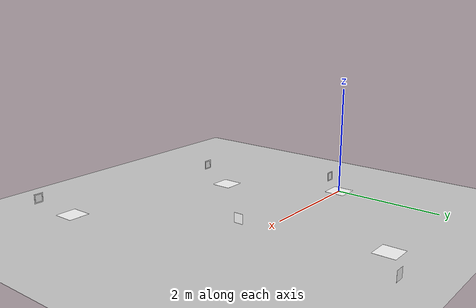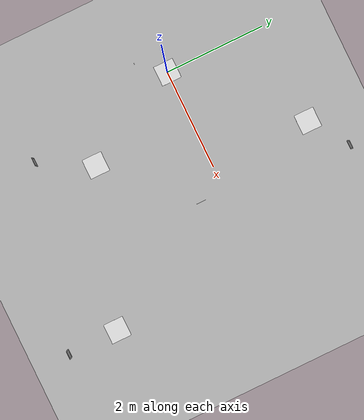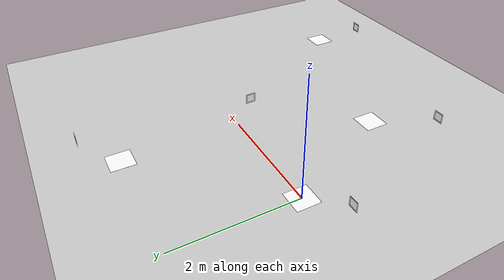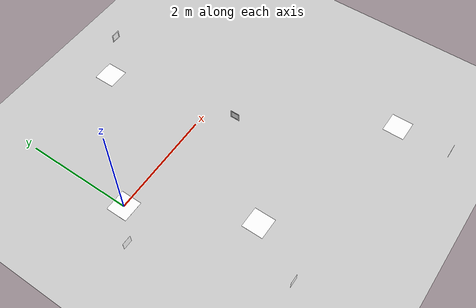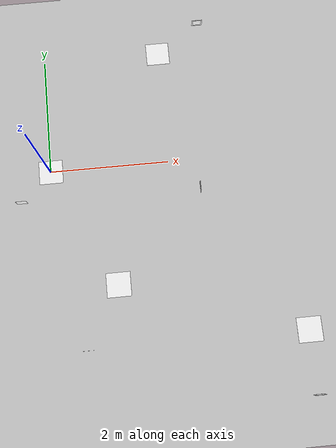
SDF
<sdf version="1.10">
 <world name="default">
  <physics name="1ms" type="ignored">
   <max_step_size>0.001</max_step_size>
   <real_time_factor>1</real_time_factor>
   <real_time_update_rate>1000</real_time_update_rate>
  </physics>
  <plugin name="gz::sim::systems::Physics" filename="gz-sim-physics-system"/>
  <plugin name="gz::sim::systems::UserCommands" filename="gz-sim-user-commands-system"/>
  <plugin name="gz::sim::systems::SceneBroadcaster" filename="gz-sim-scene-broadcaster-system"/>
  <plugin name="gz::sim::systems::Sensors" filename="gz-sim-sensors-system">
   <render_engine>ogre2</render_engine>
  </plugin>
  <scene>
   <ambient>0 0 0 1</ambient>
   <background>0.699999988 0.699999988 0.699999988 1</background>
   <shadows>false</shadows>
  </scene>
  <gravity>0 0 -9.8000000000000007</gravity>
  <magnetic_field>5.5644999999999998e-06 2.2875799999999999e-05 -4.2388400000000002e-05</magnetic_field>
  <atmosphere type="adiabatic"/>
  <model name="puzzlebot_base">
   <static>true</static>
   <link name="link">
    <collision name="collision">
     <geometry><plane><normal>0 0 1</normal><size>10 10</size></plane></geometry>
     <surface>
      <contact><collide_bitmask>65535</collide_bitmask></contact>
      <friction><ode><mu>100</mu><mu2>50</mu2></ode></friction>
     </surface>
    </collision>
    <visual name="puzzlebot_visual">
     <pose>0 0 0.001 0 0 0</pose>
     <cast_shadows>false</cast_shadows>
     <geometry><plane><normal>0 0 1</normal><size>8 8</size></plane></geometry>
     <material>
      <ambient>0.800000012 0.800000012 0.800000012 1</ambient>
      <diffuse>0.800000012 0.800000012 0.800000012 1</diffuse>
      <specular>1 0.800000012 0.800000012 1</specular>
      <pbr>
       <metal>
        <albedo_map>model://puzzlebot_base/materials/textures/puzzlebot_wood_6.png</albedo_map>
        <normal_map>model://puzzlebot_base/materials/textures/puzzlebot_wood_6.png</normal_map>
       </metal>
      </pbr>
     </material>
    </visual>
    <inertial>
     <mass>1</mass>
     <inertia><ixx>1</ixx><ixy>0</ixy><ixz>0</ixz><iyy>1</iyy><iyz>0</iyz><izz>1</izz></inertia>
    </inertial>
   </link>
   <pose>2.1416399478912354 -0.76597112417221069 0 0 0 0</pose>
  </model>
  <model name="marker_0">
   <pose>2.5 -0.5 0.090999999999999998 0 0 -3.1415926531795866</pose>
   <static>true</static>
   <link name="link">
    <inertial>
     <mass>0.28100000000000003</mass>
     <inertia>
      <ixx>0.00061669999999999997</ixx>
      <ixy>0</ixy>
      <ixz>0</ixz>
      <iyy>0.00061669999999999997</iyy>
      <iyz>0</iyz>
      <izz>0.00061669999999999997</izz>
     </inertia>
    </inertial>
    <collision name="collision">
     <geometry><box><size>0.001 0.17999999999999999 0.17999999999999999</size></box></geometry>
     <surface>
      <contact><ode><max_vel>1</max_vel><min_depth>0.001</min_depth><kp>1000000</kp><kd>10</kd></ode></contact>
      <friction><ode><mu>1</mu><mu2>1</mu2></ode></friction>
     </surface>
    </collision>
    <visual name="box_visual">
     <cast_shadows>false</cast_shadows>
     <geometry><box><size>0.001 0.17999999999999999 0.17999999999999999</size></box></geometry>
     <material>
      <ambient>1 1 1 1</ambient>
      <diffuse>1 1 1 1</diffuse>
      <specular>1 1 1 1</specular>
      <emissive>0.600000024 0.600000024 0.600000024 1</emissive>
     </material>
    </visual>
    <visual name="aruco_visual1">
     <cast_shadows>false</cast_shadows>
     <pose>0.00064999999999999997 0 0 1.5708 -5.5511151231257827e-17 1.5708</pose>
     <geometry><plane><normal>0 0 1</normal><size>0.14000000000000001 0.14000000000000001</size></plane></geometry>
     <material>
      <pbr>
       <metal>
        <albedo_map>model://aruco_marker_0/materials/textures/marker0.png</albedo_map>
        <normal_map>model://aruco_marker_0/materials/textures/marker0.png</normal_map>
       </metal>
      </pbr>
      <ambient>1 1 1 1</ambient>
      <diffuse>1 1 1 1</diffuse>
      <specular>1 1 1 1</specular>
      <emissive>0 0 0 1</emissive>
     </material>
    </visual>
   </link>
  </model>
  <model name="marker_1">
   <pose>2.75 2.5 0.089999999999999997 0 0 -1.5700000000000001</pose>
   <static>true</static>
   <link name="link">
    <inertial>
     <mass>0.28100000000000003</mass>
     <inertia>
      <ixx>0.00061669999999999997</ixx>
      <ixy>0</ixy>
      <ixz>0</ixz>
      <iyy>0.00061669999999999997</iyy>
      <iyz>0</iyz>
      <izz>0.00061669999999999997</izz>
     </inertia>
    </inertial>
    <collision name="collision">
     <geometry><box><size>0.001 0.17999999999999999 0.17999999999999999</size></box></geometry>
     <surface>
      <contact><ode><max_vel>1</max_vel><min_depth>0.001</min_depth><kp>1000000</kp><kd>10</kd></ode></contact>
      <friction><ode><mu>1</mu><mu2>1</mu2></ode></friction>
     </surface>
    </collision>
    <visual name="box_visual">
     <cast_shadows>false</cast_shadows>
     <geometry><box><size>0.001 0.17999999999999999 0.17999999999999999</size></box></geometry>
     <material>
      <ambient>1 1 1 1</ambient>
      <diffuse>1 1 1 1</diffuse>
      <specular>1 1 1 1</specular>
      <emissive>0.600000024 0.600000024 0.600000024 1</emissive>
     </material>
    </visual>
    <visual name="aruco_visual1">
     <cast_shadows>false</cast_shadows>
     <pose>0.00064999999999999997 0 0 1.5708 -5.5511151231257827e-17 1.5708</pose>
     <geometry><plane><normal>0 0 1</normal><size>0.14000000000000001 0.14000000000000001</size></plane></geometry>
     <material>
      <pbr>
       <metal>
        <albedo_map>model://aruco_marker_1/materials/textures/marker1.png</albedo_map>
        <normal_map>model://aruco_marker_1/materials/textures/marker1.png</normal_map>
       </metal>
      </pbr>
      <ambient>1 1 1 1</ambient>
      <diffuse>1 1 1 1</diffuse>
      <specular>1 1 1 1</specular>
      <emissive>0 0 0 1</emissive>
     </material>
    </visual>
   </link>
  </model>
  <model name="marker_2">
   <pose>4 -4 0.089999999999999997 0 0 1.5699999999999998</pose>
   <static>true</static>
   <link name="link">
    <inertial>
     <mass>0.28100000000000003</mass>
     <inertia>
      <ixx>0.00061669999999999997</ixx>
      <ixy>0</ixy>
      <ixz>0</ixz>
      <iyy>0.00061669999999999997</iyy>
      <iyz>0</iyz>
      <izz>0.00061669999999999997</izz>
     </inertia>
    </inertial>
    <collision name="collision">
     <geometry><box><size>0.001 0.17999999999999999 0.17999999999999999</size></box></geometry>
     <surface>
      <contact><ode><max_vel>1</max_vel><min_depth>0.001</min_depth><kp>1000000</kp><kd>10</kd></ode></contact>
      <friction><ode><mu>1</mu><mu2>1</mu2></ode></friction>
     </surface>
    </collision>
    <visual name="box_visual">
     <cast_shadows>false</cast_shadows>
     <geometry><box><size>0.001 0.17999999999999999 0.17999999999999999</size></box></geometry>
     <material>
      <ambient>1 1 1 1</ambient>
      <diffuse>1 1 1 1</diffuse>
      <specular>1 1 1 1</specular>
      <emissive>0.600000024 0.600000024 0.600000024 1</emissive>
     </material>
    </visual>
    <visual name="aruco_visual1">
     <cast_shadows>false</cast_shadows>
     <pose>0.00064999999999999997 0 0 1.5708 -5.5511151231257827e-17 1.5708</pose>
     <geometry><plane><normal>0 0 1</normal><size>0.14000000000000001 0.14000000000000001</size></plane></geometry>
     <material>
      <pbr>
       <metal>
        <albedo_map>model://aruco_marker_2/materials/textures/marker2.png</albedo_map>
        <normal_map>model://aruco_marker_2/materials/textures/marker2.png</normal_map>
       </metal>
      </pbr>
      <ambient>1 1 1 1</ambient>
      <diffuse>1 1 1 1</diffuse>
      <specular>1 1 1 1</specular>
      <emissive>0 0 0 1</emissive>
     </material>
    </visual>
   </link>
  </model>
  <model name="marker_3">
   <pose>-0.5 -0.5 0.090999999999999998 0 0 1.5708000000000013</pose>
   <static>true</static>
   <link name="link">
    <inertial>
     <mass>0.28100000000000003</mass>
     <inertia>
      <ixx>0.00061669999999999997</ixx>
      <ixy>0</ixy>
      <ixz>0</ixz>
      <iyy>0.00061669999999999997</iyy>
      <iyz>0</iyz>
      <izz>0.00061669999999999997</izz>
     </inertia>
    </inertial>
    <collision name="collision">
     <geometry><box><size>0.001 0.17999999999999999 0.17999999999999999</size></box></geometry>
     <surface>
      <contact><ode><max_vel>1</max_vel><min_depth>0.001</min_depth><kp>1000000</kp><kd>10</kd></ode></contact>
      <friction><ode><mu>1</mu><mu2>1</mu2></ode></friction>
     </surface>
    </collision>
    <visual name="box_visual">
     <cast_shadows>false</cast_shadows>
     <geometry><box><size>0.001 0.17999999999999999 0.17999999999999999</size></box></geometry>
     <material>
      <ambient>1 1 1 1</ambient>
      <diffuse>1 1 1 1</diffuse>
      <specular>1 1 1 1</specular>
      <emissive>0.600000024 0.600000024 0.600000024 1</emissive>
     </material>
    </visual>
    <visual name="aruco_visual1">
     <cast_shadows>false</cast_shadows>
     <pose>0.00064999999999999997 0 0 1.5708 -5.5511151231257827e-17 1.5708</pose>
     <geometry><plane><normal>0 0 1</normal><size>0.14000000000000001 0.14000000000000001</size></plane></geometry>
     <material>
      <pbr>
       <metal>
        <albedo_map>model://aruco_marker_3/materials/textures/marker3.png</albedo_map>
        <normal_map>model://aruco_marker_3/materials/textures/marker3.png</normal_map>
       </metal>
      </pbr>
      <ambient>1 1 1 1</ambient>
      <diffuse>1 1 1 1</diffuse>
      <specular>1 1 1 1</specular>
      <emissive>0 0 0 1</emissive>
     </material>
    </visual>
   </link>
  </model>
  <model name="marker_4">
   <pose>0.45000000000000001 -3 0.10000000000000001 0 0 1.5708000000000013</pose>
   <static>true</static>
   <link name="link">
    <inertial>
     <mass>0.28100000000000003</mass>
     <inertia>
      <ixx>0.00061669999999999997</ixx>
      <ixy>0</ixy>
      <ixz>0</ixz>
      <iyy>0.00061669999999999997</iyy>
      <iyz>0</iyz>
      <izz>0.00061669999999999997</izz>
     </inertia>
    </inertial>
    <collision name="collision">
     <geometry><box><size>0.001 0.17999999999999999 0.17999999999999999</size></box></geometry>
     <surface>
      <contact><ode><max_vel>1</max_vel><min_depth>0.001</min_depth><kp>1000000</kp><kd>10</kd></ode></contact>
      <friction><ode><mu>1</mu><mu2>1</mu2></ode></friction>
     </surface>
    </collision>
    <visual name="box_visual">
     <cast_shadows>false</cast_shadows>
     <geometry><box><size>0.001 0.17999999999999999 0.17999999999999999</size></box></geometry>
     <material>
      <ambient>1 1 1 1</ambient>
      <diffuse>1 1 1 1</diffuse>
      <specular>1 1 1 1</specular>
      <emissive>0.600000024 0.600000024 0.600000024 1</emissive>
     </material>
    </visual>
    <visual name="aruco_visual1">
     <cast_shadows>false</cast_shadows>
     <pose>0.00064999999999999997 0 0 1.5708 -5.5511151231257827e-17 1.5708</pose>
     <geometry><plane><normal>0 0 1</normal><size>0.14000000000000001 0.14000000000000001</size></plane></geometry>
     <material>
      <pbr>
       <metal>
        <albedo_map>model://aruco_marker_4/materials/textures/marker4.png</albedo_map>
        <normal_map>model://aruco_marker_4/materials/textures/marker4.png</normal_map>
       </metal>
      </pbr>
      <ambient>1 1 1 1</ambient>
      <diffuse>1 1 1 1</diffuse>
      <specular>1 1 1 1</specular>
      <emissive>0 0 0 1</emissive>
     </material>
    </visual>
   </link>
  </model>
  <model name="goal_1">
   <static>true</static>
   <link name="link">
    <visual name="visual">
     <cast_shadows>false</cast_shadows>
     <geometry><plane><normal>0 0 1</normal><size>0.40000000000000002 0.40000000000000002</size></plane></geometry>
     <material>
      <ambient>1 1 1 1</ambient>
      <diffuse>1 1 1 1</diffuse>
      <specular>1 1 1 1</specular>
      <pbr>
       <metal>
        <albedo_map>model://goal_marker_5/materials/textures/mcr2_goal_5.png</albedo_map>
        <normal_map>model://goal_marker_5/materials/textures/mcr2_goal_5.png</normal_map>
       </metal>
      </pbr>
     </material>
    </visual>
    <inertial>
     <mass>1</mass>
     <inertia><ixx>1</ixx><ixy>0</ixy><ixz>0</ixz><iyy>1</iyy><iyz>0</iyz><izz>1</izz></inertia>
    </inertial>
   </link>
   <pose>0 0 0.01 0 0 0</pose>
  </model>
  <model name="goal_2">
   <static>true</static>
   <link name="link">
    <visual name="visual">
     <cast_shadows>false</cast_shadows>
     <geometry><plane><normal>0 0 1</normal><size>0.40000000000000002 0.40000000000000002</size></plane></geometry>
     <material>
      <ambient>1 1 1 1</ambient>
      <diffuse>1 1 1 1</diffuse>
      <specular>1 1 1 1</specular>
      <pbr>
       <metal>
        <albedo_map>model://goal_marker_5/materials/textures/mcr2_goal_5.png</albedo_map>
        <normal_map>model://goal_marker_5/materials/textures/mcr2_goal_5.png</normal_map>
       </metal>
      </pbr>
     </material>
    </visual>
    <inertial>
     <mass>1</mass>
     <inertia><ixx>1</ixx><ixy>0</ixy><ixz>0</ixz><iyy>1</iyy><iyz>0</iyz><izz>1</izz></inertia>
    </inertial>
   </link>
   <pose>1 -2 0.01 0 0 0</pose>
  </model>
  <model name="goal_3">
   <static>true</static>
   <link name="link">
    <visual name="visual">
     <cast_shadows>false</cast_shadows>
     <geometry><plane><normal>0 0 1</normal><size>0.40000000000000002 0.40000000000000002</size></plane></geometry>
     <material>
      <ambient>1 1 1 1</ambient>
      <diffuse>1 1 1 1</diffuse>
      <specular>1 1 1 1</specular>
      <pbr>
       <metal>
        <albedo_map>model://goal_marker_5/materials/textures/mcr2_goal_5.png</albedo_map>
        <normal_map>model://goal_marker_5/materials/textures/mcr2_goal_5.png</normal_map>
       </metal>
      </pbr>
     </material>
    </visual>
    <inertial>
     <mass>1</mass>
     <inertia><ixx>1</ixx><ixy>0</ixy><ixz>0</ixz><iyy>1</iyy><iyz>0</iyz><izz>1</izz></inertia>
    </inertial>
   </link>
   <pose>4 -3 0.01 0 0 0</pose>
  </model>
  <model name="goal_4">
   <static>true</static>
   <link name="link">
    <visual name="visual">
     <cast_shadows>false</cast_shadows>
     <geometry><plane><normal>0 0 1</normal><size>0.40000000000000002 0.40000000000000002</size></plane></geometry>
     <material>
      <ambient>1 1 1 1</ambient>
      <diffuse>1 1 1 1</diffuse>
      <specular>1 1 1 1</specular>
      <pbr>
       <metal>
        <albedo_map>model://goal_marker_5/materials/textures/mcr2_goal_5.png</albedo_map>
        <normal_map>model://goal_marker_5/materials/textures/mcr2_goal_5.png</normal_map>
       </metal>
      </pbr>
     </material>
    </visual>
    <inertial>
     <mass>1</mass>
     <inertia><ixx>1</ixx><ixy>0</ixy><ixz>0</ixz><iyy>1</iyy><iyz>0</iyz><izz>1</izz></inertia>
    </inertial>
   </link>
   <pose>2 2 0.01 0 0 0</pose>
  </model>
  <light name="light_1" type="directional">
   <pose>0 0 10 0 0 0</pose>
   <cast_shadows>false</cast_shadows>
   <intensity>1</intensity>
   <direction>-0.5 0.10000000000000001 -0.90000000000000002</direction>
   <diffuse>0.800000012 0.800000012 0.800000012 1</diffuse>
   <specular>0.200000003 0.200000003 0.200000003 1</specular>
   <attenuation>
    <range>1000</range>
    <linear>0.01</linear>
    <constant>0.90000000000000002</constant>
    <quadratic>0.001</quadratic>
   </attenuation>
   <spot><inner_angle>0</inner_angle><outer_angle>0</outer_angle><falloff>0</falloff></spot>
  </light>
  <light name="point_light_0" type="point">
   <pose>1 -1 1 0 0 0</pose>
   <cast_shadows>false</cast_shadows>
   <intensity>1</intensity>
   <direction>0 0 -1</direction>
   <diffuse>0.5 0.5 0.5 1</diffuse>
   <specular>0.300000012 0.300000012 0.300000012 1</specular>
   <attenuation>
    <range>20</range>
    <linear>0.01</linear>
    <constant>0.5</constant>
    <quadratic>0.001</quadratic>
   </attenuation>
   <spot><inner_angle>0</inner_angle><outer_angle>0</outer_angle><falloff>0</falloff></spot>
  </light>
  <light name="point_light_1" type="point">
   <pose>-1 1 1 0 0 0</pose>
   <cast_shadows>false</cast_shadows>
   <intensity>1</intensity>
   <direction>0 0 -1</direction>
   <diffuse>0.5 0.5 0.5 1</diffuse>
   <specular>0.300000012 0.300000012 0.300000012 1</specular>
   <attenuation>
    <range>20</range>
    <linear>0.01</linear>
    <constant>0.5</constant>
    <quadratic>0.001</quadratic>
   </attenuation>
   <spot><inner_angle>0</inner_angle><outer_angle>0</outer_angle><falloff>0</falloff></spot>
  </light>
 </world>
</sdf>
